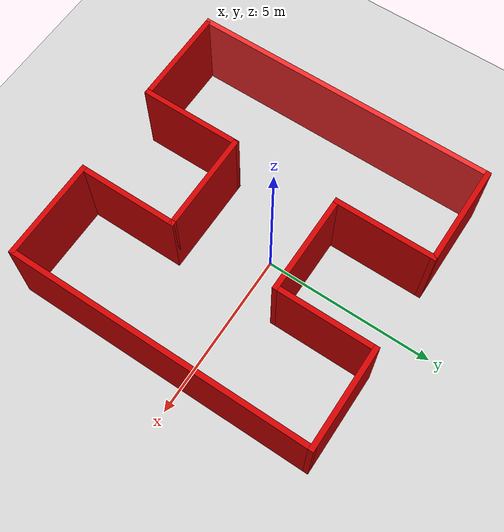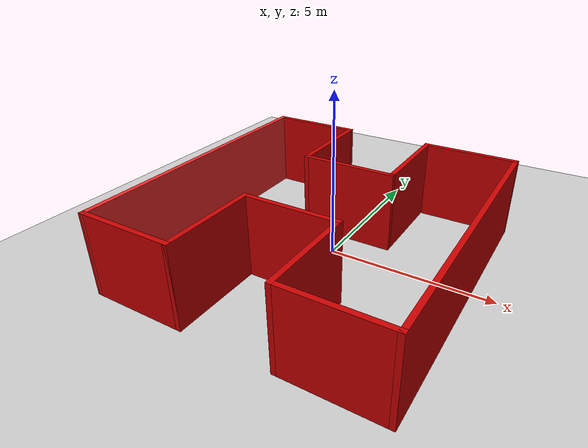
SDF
<sdf version="1.6">
 <world name="default">
  <light name="sun" type="directional">
   <pose>0 0 10 0 -0 0</pose>
   <diffuse>0.8 0.8 0.8 1</diffuse>
   <specular>0.2 0.2 0.2 1</specular>
   <attenuation>
    <range>1000</range>
    <constant>0.9</constant>
    <linear>0.01</linear>
    <quadratic>0.001</quadratic>
   </attenuation>
   <direction>-0.5 0.1 -0.9</direction>
  </light>
  <model name="ground_plane">
   <static>1</static>
   <link name="link">
    <collision name="collision">
     <geometry><plane><normal>0 0 1</normal><size>100 100</size></plane></geometry>
     <surface>
      <contact><collide_bitmask>65535</collide_bitmask></contact>
      <friction><ode><mu>100</mu><mu2>50</mu2></ode></friction>
     </surface>
    </collision>
    <visual name="visual">
     <cast_shadows>0</cast_shadows>
     <geometry><plane><normal>0 0 1</normal><size>100 100</size></plane></geometry>
     <material>
      <script><uri>file://media/materials/scripts/gazebo.material</uri><name>Gazebo/Grey</name></script>
     </material>
    </visual>
   </link>
  </model>
  <gravity>0 0 -9.8</gravity>
  <magnetic_field>6e-06 2.3e-05 -4.2e-05</magnetic_field>
  <atmosphere type="adiabatic"/>
  <physics name="default_physics" default="0" type="ode">
   <max_step_size>0.001</max_step_size>
   <real_time_factor>1</real_time_factor>
   <real_time_update_rate>1000</real_time_update_rate>
  </physics>
  <scene><ambient>0.4 0.4 0.4 1</ambient><background>0.7 0.7 0.7 1</background><shadows>1</shadows></scene>
  <audio><device>default</device></audio>
  <spherical_coordinates>
   <surface_model>EARTH_WGS84</surface_model>
   <latitude_deg>0</latitude_deg>
   <longitude_deg>0</longitude_deg>
   <elevation>0</elevation>
   <heading_deg>0</heading_deg>
  </spherical_coordinates>
  <model name="slambuilding">
   <pose>-0.062105 -0.568773 0 0 -0 0</pose>
   <link name="Wall_0">
    <collision name="Wall_0_Collision">
     <geometry><box><size>3 0.15 2.5</size></box></geometry>
     <pose>0 0 1.25 0 -0 0</pose>
    </collision>
    <visual name="Wall_0_Visual">
     <pose>0 0 1.25 0 -0 0</pose>
     <geometry><box><size>3 0.15 2.5</size></box></geometry>
     <material>
      <script><uri>file://media/materials/scripts/gazebo.material</uri><name>Gazebo/Grey</name></script>
      <ambient>0.8 0 0 1</ambient>
     </material>
     <meta><layer>0</layer></meta>
    </visual>
    <pose>-2.85 -4.425 0 0 -0 0</pose>
   </link>
   <link name="Wall_1">
    <collision name="Wall_1_Collision">
     <geometry><box><size>3 0.15 2.5</size></box></geometry>
     <pose>0 0 1.25 0 -0 0</pose>
    </collision>
    <visual name="Wall_1_Visual">
     <pose>0 0 1.25 0 -0 0</pose>
     <geometry><box><size>3 0.15 2.5</size></box></geometry>
     <material>
      <script><uri>file://media/materials/scripts/gazebo.material</uri><name>Gazebo/Grey</name></script>
      <ambient>0.8 0 0 1</ambient>
     </material>
     <meta><layer>0</layer></meta>
    </visual>
    <pose>-1.425 -3 0 0 -0 1.5708</pose>
   </link>
   <link name="Wall_10">
    <collision name="Wall_10_Collision">
     <geometry><box><size>3 0.15 2.5</size></box></geometry>
     <pose>0 0 1.25 0 -0 0</pose>
    </collision>
    <visual name="Wall_10_Visual">
     <pose>0 0 1.25 0 -0 0</pose>
     <geometry><box><size>3 0.15 2.5</size></box></geometry>
     <material>
      <script><uri>file://media/materials/scripts/gazebo.material</uri><name>Gazebo/Grey</name></script>
      <ambient>0.8 0 0 1</ambient>
     </material>
     <meta><layer>0</layer></meta>
    </visual>
    <pose>-2.85 4.425 0 0 -0 3.14159</pose>
   </link>
   <link name="Wall_11">
    <collision name="Wall_11_Collision">
     <geometry><box><size>9 0.15 2.5</size></box></geometry>
     <pose>0 0 1.25 0 -0 0</pose>
    </collision>
    <visual name="Wall_11_Visual">
     <pose>0 0 1.25 0 -0 0</pose>
     <geometry><box><size>9 0.15 2.5</size></box></geometry>
     <material>
      <script><uri>file://media/materials/scripts/gazebo.material</uri><name>Gazebo/Grey</name></script>
      <ambient>0.937255 0.160784 0.160784 1</ambient>
     </material>
     <meta><layer>0</layer></meta>
    </visual>
    <pose>-4.275 -0 0 0 -0 -1.5708</pose>
   </link>
   <link name="Wall_2">
    <collision name="Wall_2_Collision">
     <geometry><box><size>3 0.15 2.5</size></box></geometry>
     <pose>0 0 1.25 0 -0 0</pose>
    </collision>
    <visual name="Wall_2_Visual">
     <pose>0 0 1.25 0 -0 0</pose>
     <geometry><box><size>3 0.15 2.5</size></box></geometry>
     <material>
      <script><uri>file://media/materials/scripts/gazebo.material</uri><name>Gazebo/Grey</name></script>
      <ambient>0.8 0 0 1</ambient>
     </material>
     <meta><layer>0</layer></meta>
    </visual>
    <pose>-0 -1.575 0 0 -0 0</pose>
   </link>
   <link name="Wall_3">
    <collision name="Wall_3_Collision">
     <geometry><box><size>3 0.15 2.5</size></box></geometry>
     <pose>0 0 1.25 0 -0 0</pose>
    </collision>
    <visual name="Wall_3_Visual">
     <pose>0 0 1.25 0 -0 0</pose>
     <geometry><box><size>3 0.15 2.5</size></box></geometry>
     <material>
      <script><uri>file://media/materials/scripts/gazebo.material</uri><name>Gazebo/Grey</name></script>
      <ambient>0.8 0 0 1</ambient>
     </material>
     <meta><layer>0</layer></meta>
    </visual>
    <pose>1.425 -3 0 0 -0 -1.5708</pose>
   </link>
   <link name="Wall_4">
    <collision name="Wall_4_Collision">
     <geometry><box><size>3 0.15 2.5</size></box></geometry>
     <pose>0 0 1.25 0 -0 0</pose>
    </collision>
    <visual name="Wall_4_Visual">
     <pose>0 0 1.25 0 -0 0</pose>
     <geometry><box><size>3 0.15 2.5</size></box></geometry>
     <material>
      <script><uri>file://media/materials/scripts/gazebo.material</uri><name>Gazebo/Grey</name></script>
      <ambient>0.8 0 0 1</ambient>
     </material>
     <meta><layer>0</layer></meta>
    </visual>
    <pose>2.85 -4.425 0 0 -0 0</pose>
   </link>
   <link name="Wall_5">
    <collision name="Wall_5_Collision">
     <geometry><box><size>9 0.15 2.5</size></box></geometry>
     <pose>0 0 1.25 0 -0 0</pose>
    </collision>
    <visual name="Wall_5_Visual">
     <pose>0 0 1.25 0 -0 0</pose>
     <geometry><box><size>9 0.15 2.5</size></box></geometry>
     <material>
      <script><uri>file://media/materials/scripts/gazebo.material</uri><name>Gazebo/Grey</name></script>
      <ambient>0.8 0 0 1</ambient>
     </material>
     <meta><layer>0</layer></meta>
    </visual>
    <pose>4.275 -0 0 0 -0 1.5708</pose>
   </link>
   <link name="Wall_6">
    <collision name="Wall_6_Collision">
     <geometry><box><size>3 0.15 2.5</size></box></geometry>
     <pose>0 0 1.25 0 -0 0</pose>
    </collision>
    <visual name="Wall_6_Visual">
     <pose>0 0 1.25 0 -0 0</pose>
     <geometry><box><size>3 0.15 2.5</size></box></geometry>
     <material>
      <script><uri>file://media/materials/scripts/gazebo.material</uri><name>Gazebo/Grey</name></script>
      <ambient>0.8 0 0 1</ambient>
     </material>
     <meta><layer>0</layer></meta>
    </visual>
    <pose>2.85 4.425 0 0 -0 3.14159</pose>
   </link>
   <link name="Wall_7">
    <collision name="Wall_7_Collision">
     <geometry><box><size>3 0.15 2.5</size></box></geometry>
     <pose>0 0 1.25 0 -0 0</pose>
    </collision>
    <visual name="Wall_7_Visual">
     <pose>0 0 1.25 0 -0 0</pose>
     <geometry><box><size>3 0.15 2.5</size></box></geometry>
     <material>
      <script><uri>file://media/materials/scripts/gazebo.material</uri><name>Gazebo/Grey</name></script>
      <ambient>0.8 0 0 1</ambient>
     </material>
     <meta><layer>0</layer></meta>
    </visual>
    <pose>1.425 3 0 0 -0 -1.5708</pose>
   </link>
   <link name="Wall_8">
    <collision name="Wall_8_Collision">
     <geometry><box><size>3 0.15 2.5</size></box></geometry>
     <pose>0 0 1.25 0 -0 0</pose>
    </collision>
    <visual name="Wall_8_Visual">
     <pose>0 0 1.25 0 -0 0</pose>
     <geometry><box><size>3 0.15 2.5</size></box></geometry>
     <material>
      <script><uri>file://media/materials/scripts/gazebo.material</uri><name>Gazebo/Grey</name></script>
      <ambient>0.8 0 0 1</ambient>
     </material>
     <meta><layer>0</layer></meta>
    </visual>
    <pose>-0 1.575 0 0 -0 3.14159</pose>
   </link>
   <link name="Wall_9">
    <collision name="Wall_9_Collision">
     <geometry><box><size>3 0.15 2.5</size></box></geometry>
     <pose>0 0 1.25 0 -0 0</pose>
    </collision>
    <visual name="Wall_9_Visual">
     <pose>0 0 1.25 0 -0 0</pose>
     <geometry><box><size>3 0.15 2.5</size></box></geometry>
     <material>
      <script><uri>file://media/materials/scripts/gazebo.material</uri><name>Gazebo/Grey</name></script>
      <ambient>0.8 0 0 1</ambient>
     </material>
     <meta><layer>0</layer></meta>
    </visual>
    <pose>-1.425 3 0 0 -0 1.5708</pose>
   </link>
   <static>1</static>
  </model>
 </world>
</sdf>
